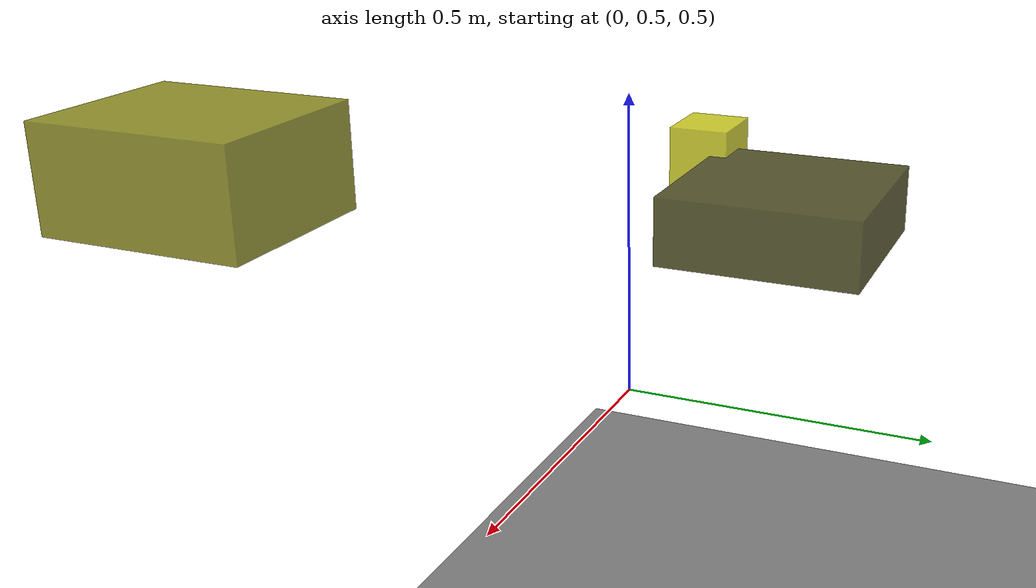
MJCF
<?xml version="1.0"?>
<mujoco model="obstacle_scene">
  <compiler angle="radian" coordinate="local"/>
  <option timestep="0.001" gravity="0 0 -9.81"/>

  <asset>
    <material name="obstacle_mat" rgba="0.8 0.8 0.0 0.8"/>
    <material name="ground_mat" rgba="0.5 0.5 0.5 1"/>
  </asset>

  <worldbody>
    <!-- Ground plane -->
    <geom name="ground" type="plane" size="3 3 0.1" material="ground_mat"/>

    <!-- Obstacles -->
    <body name="obstacle_0" pos="-0.367039 0.651944 0.715423">
      <geom name="obs_0" type="box" size="0.183639 0.182870 0.063056" rgba="0.2 0.2 0.0 0.8"/>
    </body>
    <body name="obstacle_1" pos="0.893345 0.422446 1.104645">
      <geom name="obs_1" type="box" size="0.093978 0.111522 0.055658" rgba="0.5 0.5 0.0 0.8"/>
    </body>
    <body name="obstacle_2" pos="-0.541628 0.445234 0.760879">
      <geom name="obs_2" type="box" size="0.066710 0.057024 0.066249" rgba="0.8 0.8 0.0 0.8"/>
    </body>
  </worldbody>
</mujoco>
